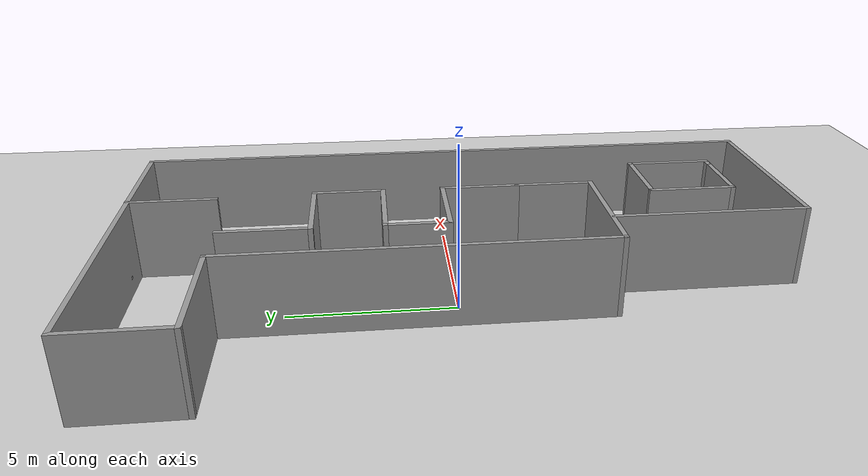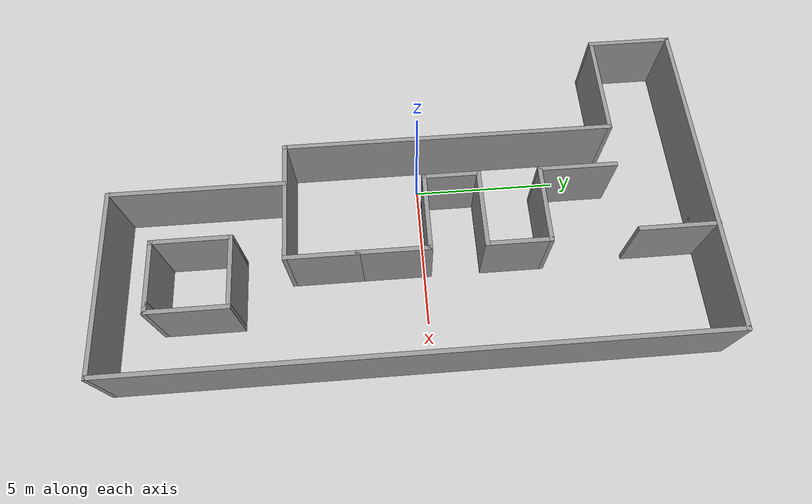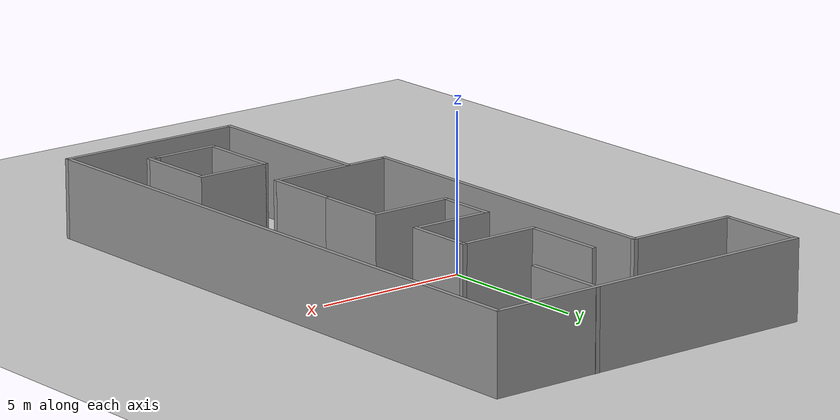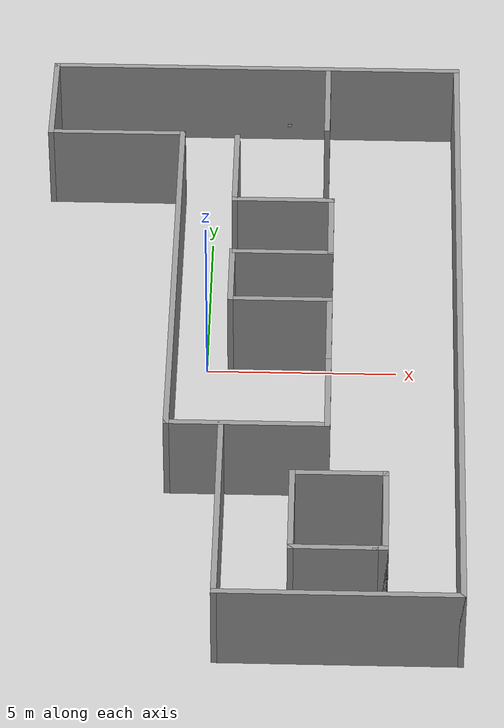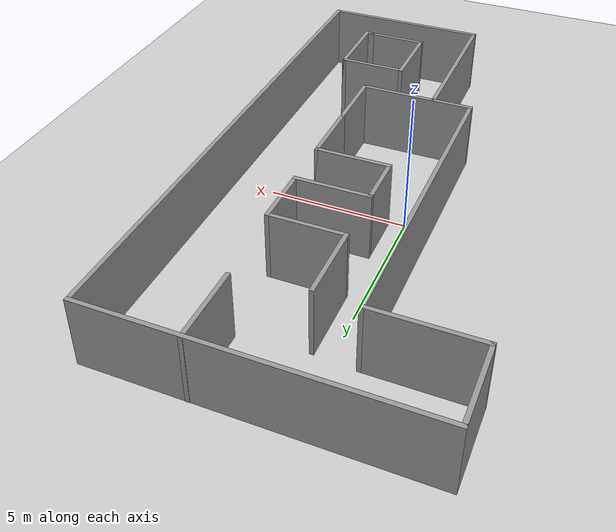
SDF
<sdf version="1.7">
 <world name="default">
  <light name="sun" type="directional">
   <pose>0 0 10 0 -0 0</pose>
   <diffuse>0.8 0.8 0.8 1</diffuse>
   <specular>0.2 0.2 0.2 1</specular>
   <attenuation>
    <range>1000</range>
    <constant>0.9</constant>
    <linear>0.01</linear>
    <quadratic>0.001</quadratic>
   </attenuation>
   <direction>-0.5 0.1 -0.9</direction>
   <spot><inner_angle>0</inner_angle><outer_angle>0</outer_angle><falloff>0</falloff></spot>
  </light>
  <model name="ground_plane">
   <static>1</static>
   <link name="link">
    <collision name="collision">
     <geometry><plane><normal>0 0 1</normal><size>100 100</size></plane></geometry>
     <surface><friction><ode><mu>100</mu><mu2>50</mu2></ode></friction></surface>
    </collision>
    <visual name="visual">
     <cast_shadows>0</cast_shadows>
     <geometry><plane><normal>0 0 1</normal><size>100 100</size></plane></geometry>
     <material>
      <script><uri>file://media/materials/scripts/gazebo.material</uri><name>Gazebo/Grey</name></script>
     </material>
    </visual>
   </link>
  </model>
  <gravity>0 0 -9.8</gravity>
  <magnetic_field>6e-06 2.3e-05 -4.2e-05</magnetic_field>
  <atmosphere type="adiabatic"/>
  <physics type="ode">
   <max_step_size>0.001</max_step_size>
   <real_time_factor>1</real_time_factor>
   <real_time_update_rate>1000</real_time_update_rate>
  </physics>
  <scene><ambient>0.4 0.4 0.4 1</ambient><background>0.7 0.7 0.7 1</background><shadows>1</shadows></scene>
  <audio><device>default</device></audio>
  <spherical_coordinates>
   <surface_model>EARTH_WGS84</surface_model>
   <latitude_deg>0</latitude_deg>
   <longitude_deg>0</longitude_deg>
   <elevation>0</elevation>
   <heading_deg>0</heading_deg>
  </spherical_coordinates>
  <model name="textured_wall">
   <pose>-0.008486 9.60302 0 0 -0 0</pose>
   <static>1</static>
   <link name="link">
    <pose>2 0 0.5 0 -0 0</pose>
    <visual name="visual">
     <geometry><box><size>0.1 0.002 0.1</size></box></geometry>
     <material>
      <script>
       <uri>file://media/materials/scripts</uri>
       <uri>file://media/materials/textures</uri>
       <name>Custom/Marker</name>
      </script>
     </material>
    </visual>
    <collision name="collision"><geometry><box><size>1 0.05 1</size></box></geometry></collision>
   </link>
  </model>
  <model name="Untitled_0">
   <pose>1.06131 -0.36462 0 0 -0 0</pose>
   <link name="Wall_11">
    <collision name="Wall_11_Collision">
     <geometry><box><size>2.75 0.15 2.5</size></box></geometry>
     <pose>0 0 1.25 0 -0 0</pose>
    </collision>
    <visual name="Wall_11_Visual">
     <pose>0 0 1.25 0 -0 0</pose>
     <geometry><box><size>2.75 0.15 2.5</size></box></geometry>
     <material>
      <script><uri>file://media/materials/scripts/gazebo.material</uri><name>Gazebo/Grey</name></script>
      <ambient>1 1 1 1</ambient>
     </material>
     <meta><layer>0</layer></meta>
    </visual>
    <pose>0.85 2.39399 0 0 -0 3.14159</pose>
   </link>
   <link name="Wall_12">
    <collision name="Wall_12_Collision">
     <geometry><box><size>2 0.15 2.5</size></box></geometry>
     <pose>0 0 1.25 0 -0 0</pose>
    </collision>
    <visual name="Wall_12_Visual">
     <pose>0 0 1.25 0 -0 0</pose>
     <geometry><box><size>2 0.15 2.5</size></box></geometry>
     <material>
      <script><uri>file://media/materials/scripts/gazebo.material</uri><name>Gazebo/Grey</name></script>
      <ambient>1 1 1 1</ambient>
     </material>
     <meta><layer>0</layer></meta>
    </visual>
    <pose>-0.45 1.46899 0 0 -0 -1.5708</pose>
   </link>
   <link name="Wall_13">
    <collision name="Wall_13_Collision">
     <geometry><box><size>2.75 0.15 2.5</size></box></geometry>
     <pose>0 0 1.25 0 -0 0</pose>
    </collision>
    <visual name="Wall_13_Visual">
     <pose>0 0 1.25 0 -0 0</pose>
     <geometry><box><size>2.75 0.15 2.5</size></box></geometry>
     <material>
      <script><uri>file://media/materials/scripts/gazebo.material</uri><name>Gazebo/Grey</name></script>
      <ambient>1 1 1 1</ambient>
     </material>
     <meta><layer>0</layer></meta>
    </visual>
    <pose>0.85 0.543992 0 0 -0 0</pose>
   </link>
   <link name="Wall_14">
    <collision name="Wall_14_Collision">
     <geometry><box><size>2.5 0.15 2.5</size></box></geometry>
     <pose>0 0 1.25 0 -0 0</pose>
    </collision>
    <visual name="Wall_14_Visual">
     <pose>0 0 1.25 0 -0 0</pose>
     <geometry><box><size>2.5 0.15 2.5</size></box></geometry>
     <material>
      <script><uri>file://media/materials/scripts/gazebo.material</uri><name>Gazebo/Grey</name></script>
      <ambient>1 1 1 1</ambient>
     </material>
     <meta><layer>0</layer></meta>
    </visual>
    <pose>2.15 -0.631009 0 0 -0 -1.5708</pose>
   </link>
   <link name="Wall_15">
    <collision name="Wall_15_Collision">
     <geometry><box><size>2.5 0.15 2.5</size></box></geometry>
     <pose>0 0 1.25 0 -0 0</pose>
    </collision>
    <visual name="Wall_15_Visual">
     <pose>0 0 1.25 0 -0 0</pose>
     <geometry><box><size>2.5 0.15 2.5</size></box></geometry>
     <material>
      <script><uri>file://media/materials/scripts/gazebo.material</uri><name>Gazebo/Grey</name></script>
      <ambient>1 1 1 1</ambient>
     </material>
     <meta><layer>0</layer></meta>
    </visual>
    <pose>2.15 -2.98101 0 0 -0 -1.5708</pose>
   </link>
   <link name="Wall_16">
    <collision name="Wall_16_Collision">
     <geometry><box><size>4.25 0.15 2.5</size></box></geometry>
     <pose>0 0 1.25 0 -0 0</pose>
    </collision>
    <visual name="Wall_16_Visual">
     <pose>0 0 1.25 0 -0 0</pose>
     <geometry><box><size>4.25 0.15 2.5</size></box></geometry>
     <material>
      <script><uri>file://media/materials/scripts/gazebo.material</uri><name>Gazebo/Grey</name></script>
      <ambient>1 1 1 1</ambient>
     </material>
     <meta><layer>0</layer></meta>
    </visual>
    <pose>0.099999 -4.15601 0 0 -0 3.14159</pose>
   </link>
   <link name="Wall_17">
    <collision name="Wall_17_Collision">
     <geometry><box><size>11.5 0.15 2.5</size></box></geometry>
     <pose>0 0 1.25 0 -0 0</pose>
    </collision>
    <visual name="Wall_17_Visual">
     <pose>0 0 1.25 0 -0 0</pose>
     <geometry><box><size>11.5 0.15 2.5</size></box></geometry>
     <material>
      <script><uri>file://media/materials/scripts/gazebo.material</uri><name>Gazebo/Grey</name></script>
      <ambient>1 1 1 1</ambient>
     </material>
     <meta><layer>0</layer></meta>
    </visual>
    <pose>-1.95 1.51899 0 0 -0 1.5708</pose>
   </link>
   <link name="Wall_18">
    <collision name="Wall_18_Collision">
     <geometry><box><size>3.75 0.15 2.5</size></box></geometry>
     <pose>0 0 1.25 0 -0 0</pose>
    </collision>
    <visual name="Wall_18_Visual">
     <pose>0 0 1.25 0 -0 0</pose>
     <geometry><box><size>3.75 0.15 2.5</size></box></geometry>
     <material>
      <script><uri>file://media/materials/scripts/gazebo.material</uri><name>Gazebo/Grey</name></script>
      <ambient>1 1 1 1</ambient>
     </material>
     <meta><layer>0</layer></meta>
    </visual>
    <pose>-3.75 7.19399 0 0 -0 3.14159</pose>
   </link>
   <link name="Wall_19">
    <collision name="Wall_19_Collision">
     <geometry><box><size>3 0.15 2.5</size></box></geometry>
     <pose>0 0 1.25 0 -0 0</pose>
    </collision>
    <visual name="Wall_19_Visual">
     <pose>0 0 1.25 0 -0 0</pose>
     <geometry><box><size>3 0.15 2.5</size></box></geometry>
     <material>
      <script><uri>file://media/materials/scripts/gazebo.material</uri><name>Gazebo/Grey</name></script>
      <ambient>1 1 1 1</ambient>
     </material>
     <meta><layer>0</layer></meta>
    </visual>
    <pose>-5.55 8.61899 0 0 -0 1.5708</pose>
   </link>
   <link name="Wall_20">
    <collision name="Wall_20_Collision">
     <geometry><box><size>11.25 0.15 2.5</size></box></geometry>
     <pose>0 0 1.25 0 -0 0</pose>
    </collision>
    <visual name="Wall_20_Visual">
     <pose>0 0 1.25 0 -0 0</pose>
     <geometry><box><size>11.25 0.15 2.5</size></box></geometry>
     <material>
      <script><uri>file://media/materials/scripts/gazebo.material</uri><name>Gazebo/Grey</name></script>
      <ambient>1 1 1 1</ambient>
     </material>
     <meta><layer>0</layer></meta>
    </visual>
    <pose>-0 10.044 0 0 -0 0</pose>
   </link>
   <link name="Wall_21">
    <collision name="Wall_21_Collision">
     <geometry><box><size>20.25 0.15 2.5</size></box></geometry>
     <pose>0 0 1.25 0 -0 0</pose>
    </collision>
    <visual name="Wall_21_Visual">
     <pose>0 0 1.25 0 -0 0</pose>
     <geometry><box><size>20.25 0.15 2.5</size></box></geometry>
     <material>
      <script><uri>file://media/materials/scripts/gazebo.material</uri><name>Gazebo/Grey</name></script>
      <ambient>1 1 1 1</ambient>
     </material>
     <meta><layer>0</layer></meta>
    </visual>
    <pose>5.55 -0.006009 0 0 -0 -1.5708</pose>
   </link>
   <link name="Wall_22">
    <collision name="Wall_22_Collision">
     <geometry><box><size>6.25 0.15 2.5</size></box></geometry>
     <pose>0 0 1.25 0 -0 0</pose>
    </collision>
    <visual name="Wall_22_Visual">
     <pose>0 0 1.25 0 -0 0</pose>
     <geometry><box><size>6.25 0.15 2.5</size></box></geometry>
     <material>
      <script><uri>file://media/materials/scripts/gazebo.material</uri><name>Gazebo/Grey</name></script>
      <ambient>1 1 1 1</ambient>
     </material>
     <meta><layer>0</layer></meta>
    </visual>
    <pose>2.5 -10.056 0 0 -0 3.14159</pose>
   </link>
   <link name="Wall_23">
    <collision name="Wall_23_Collision">
     <geometry><box><size>6 0.15 2.5</size></box></geometry>
     <pose>0 0 1.25 0 -0 0</pose>
    </collision>
    <visual name="Wall_23_Visual">
     <pose>0 0 1.25 0 -0 0</pose>
     <geometry><box><size>6 0.15 2.5</size></box></geometry>
     <material>
      <script><uri>file://media/materials/scripts/gazebo.material</uri><name>Gazebo/Grey</name></script>
      <ambient>1 1 1 1</ambient>
     </material>
     <meta><layer>0</layer></meta>
    </visual>
    <pose>-0.55 -7.13101 0 0 -0 1.5708</pose>
   </link>
   <link name="Wall_27">
    <collision name="Wall_27_Collision">
     <geometry><box><size>2.25 0.15 2.5</size></box></geometry>
     <pose>0 0 1.25 0 -0 0</pose>
    </collision>
    <visual name="Wall_27_Visual">
     <pose>0 0 1.25 0 -0 0</pose>
     <geometry><box><size>2.25 0.15 2.5</size></box></geometry>
     <material>
      <script><uri>file://media/materials/scripts/gazebo.material</uri><name>Gazebo/Grey</name></script>
      <ambient>1 1 1 1</ambient>
     </material>
     <meta><layer>0</layer></meta>
    </visual>
    <pose>2.34357 -8.49592 0 0 -0 3.14159</pose>
   </link>
   <link name="Wall_30">
    <collision name="Wall_30_Collision">
     <geometry><box><size>2.75 0.15 2.5</size></box></geometry>
     <pose>0 0 1.25 0 -0 0</pose>
    </collision>
    <visual name="Wall_30_Visual">
     <pose>0 0 1.25 0 -0 0</pose>
     <geometry><box><size>2.75 0.15 2.5</size></box></geometry>
     <material>
      <script><uri>file://media/materials/scripts/gazebo.material</uri><name>Gazebo/Grey</name></script>
      <ambient>1 1 1 1</ambient>
     </material>
     <meta><layer>0</layer></meta>
    </visual>
    <pose>1.29357 -7.19592 0 0 -0 1.5708</pose>
   </link>
   <link name="Wall_31">
    <collision name="Wall_31_Collision">
     <geometry><box><size>2.5 0.15 2.5</size></box></geometry>
     <pose>0 0 1.25 0 -0 0</pose>
    </collision>
    <visual name="Wall_31_Visual">
     <pose>0 0 1.25 0 -0 0</pose>
     <geometry><box><size>2.5 0.15 2.5</size></box></geometry>
     <material>
      <script><uri>file://media/materials/scripts/gazebo.material</uri><name>Gazebo/Grey</name></script>
      <ambient>1 1 1 1</ambient>
     </material>
     <meta><layer>0</layer></meta>
    </visual>
    <pose>2.46857 -5.89592 0 0 -0 0</pose>
   </link>
   <link name="Wall_32">
    <collision name="Wall_32_Collision">
     <geometry><box><size>2.75 0.15 2.5</size></box></geometry>
     <pose>0 0 1.25 0 -0 0</pose>
    </collision>
    <visual name="Wall_32_Visual">
     <pose>0 0 1.25 0 -0 0</pose>
     <geometry><box><size>2.75 0.15 2.5</size></box></geometry>
     <material>
      <script><uri>file://media/materials/scripts/gazebo.material</uri><name>Gazebo/Grey</name></script>
      <ambient>1 1 1 1</ambient>
     </material>
     <meta><layer>0</layer></meta>
    </visual>
    <pose>3.64357 -7.19592 0 0 -0 -1.5708</pose>
   </link>
   <link name="Wall_33">
    <collision name="Wall_33_Collision">
     <geometry><box><size>0.4 0.15 2.5</size></box></geometry>
     <pose>0 0 1.25 0 -0 0</pose>
    </collision>
    <visual name="Wall_33_Visual">
     <pose>0 0 1.25 0 -0 0</pose>
     <geometry><box><size>0.4 0.15 2.5</size></box></geometry>
     <material>
      <script><uri>file://media/materials/scripts/gazebo.material</uri><name>Gazebo/Grey</name></script>
      <ambient>1 1 1 1</ambient>
     </material>
     <meta><layer>0</layer></meta>
    </visual>
    <pose>3.51857 -8.49592 0 0 -0 3.14159</pose>
   </link>
   <link name="Wall_35">
    <collision name="Wall_35_Collision">
     <geometry><box><size>2.25 0.15 2.5</size></box></geometry>
     <pose>0 0 1.25 0 -0 0</pose>
    </collision>
    <visual name="Wall_35_Visual">
     <pose>0 0 1.25 0 -0 0</pose>
     <geometry><box><size>2.25 0.15 2.5</size></box></geometry>
     <material>
      <script><uri>file://media/materials/scripts/gazebo.material</uri><name>Gazebo/Grey</name></script>
      <ambient>1 1 1 1</ambient>
     </material>
     <meta><layer>0</layer></meta>
    </visual>
    <pose>2.15 3.44399 0 0 -0 1.5708</pose>
   </link>
   <link name="Wall_36">
    <collision name="Wall_36_Collision">
     <geometry><box><size>2.75 0.15 2.5</size></box></geometry>
     <pose>0 0 1.25 0 -0 0</pose>
    </collision>
    <visual name="Wall_36_Visual">
     <pose>0 0 1.25 0 -0 0</pose>
     <geometry><box><size>2.75 0.15 2.5</size></box></geometry>
     <material>
      <script><uri>file://media/materials/scripts/gazebo.material</uri><name>Gazebo/Grey</name></script>
      <ambient>1 1 1 1</ambient>
     </material>
     <meta><layer>0</layer></meta>
    </visual>
    <pose>0.85 4.49399 0 0 -0 3.14159</pose>
   </link>
   <link name="Wall_37">
    <collision name="Wall_37_Collision">
     <geometry><box><size>2.75 0.15 2.5</size></box></geometry>
     <pose>0 0 1.25 0 -0 0</pose>
    </collision>
    <visual name="Wall_37_Visual">
     <pose>0 0 1.25 0 -0 0</pose>
     <geometry><box><size>2.75 0.15 2.5</size></box></geometry>
     <material>
      <script><uri>file://media/materials/scripts/gazebo.material</uri><name>Gazebo/Grey</name></script>
      <ambient>1 1 1 1</ambient>
     </material>
     <meta><layer>0</layer></meta>
    </visual>
    <pose>-0.45 5.79399 0 0 -0 1.5708</pose>
   </link>
   <link name="Wall_40">
    <collision name="Wall_40_Collision">
     <geometry><box><size>2.75 0.15 2.5</size></box></geometry>
     <pose>0 0 1.25 0 -0 0</pose>
    </collision>
    <visual name="Wall_40_Visual">
     <pose>0 0 1.25 0 -0 0</pose>
     <geometry><box><size>2.75 0.15 2.5</size></box></geometry>
     <material>
      <script><uri>file://media/materials/scripts/gazebo.material</uri><name>Gazebo/Grey</name></script>
      <ambient>1 1 1 1</ambient>
     </material>
     <meta><layer>0</layer></meta>
    </visual>
    <pose>1.99771 8.75601 0 0 -0 -1.5708</pose>
   </link>
   <static>1</static>
  </model>
 </world>
</sdf>
